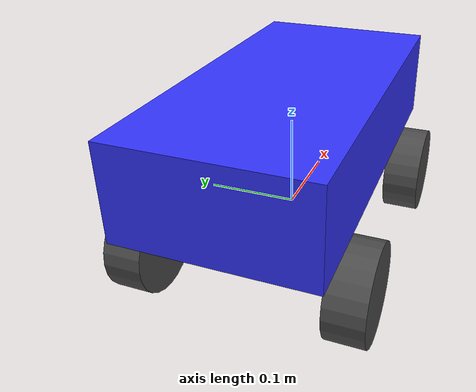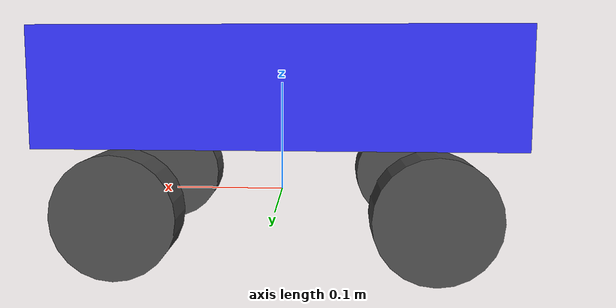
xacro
<?xml version="1.0"?>
<robot xmlns:xacro="http://www.ros.org/wiki/xacro" name="simple_bot">

    <!-- Included URDF/XACRO Files -->
    <xacro:include filename="$(find simple_robot)/urdf/robot.gazebo.xacro" />

    <xacro:property name="chassis_length" value="0.4"/>
    <xacro:property name="chassis_width" value="0.2"/>
    <xacro:property name="chassis_height" value="0.1"/>
    <xacro:property name="wheel_radius" value="0.05"/>
    <xacro:property name="wheel_width" value="0.04"/>
    <xacro:property name="wheelbase" value="0.25"/>
    <xacro:property name="track" value="0.22"/>

    <link name="base_link">
    </link>

    <link name="chassis_link">
        <visual>
            <origin xyz="0 0 0.1"/>
            <geometry>
                <box size="${chassis_length} ${chassis_width} ${chassis_height}"/>
            </geometry>
            <material name="blue">
                <color rgba="0.2 0.2 1.0 1.0"/>
            </material>
        </visual>
        <collision>
            <origin xyz="0 0 0.1"/>
            <geometry>
                <box size="${chassis_length} ${chassis_width} ${chassis_height}"/>
            </geometry>
        </collision>
        <inertial>
            <origin xyz="0 0 0.1" rpy="0 0 0"/>
            <mass value="5"/>
            <inertia ixx="0.1" ixy="0.0" ixz="0.0" iyy="0.1" iyz="0.0" izz="0.1"/>
        </inertial>
    </link>

    <joint name="chassis_joint" type="fixed">
        <parent link="base_link"/>
        <child link="chassis_link"/>
        <origin xyz="0 0 0"/>
    </joint>

    <!-- Rear Wheels (Driving) -->
    <xacro:macro name="rear_wheel" params="prefix y_offset">
        <link name="${prefix}_wheel_link">
            <visual>
                <origin xyz="0 0 0" rpy="1.5707 0 0"/>
                <geometry>
                    <cylinder radius="${wheel_radius}" length="${wheel_width}"/>
                </geometry>
                <material name="black">
                    <color rgba="0.3 0.3 0.3 1.0"/>
                </material>
            </visual>
            <collision>
                <origin xyz="0 0 0" rpy="1.5707 0 0"/>
                <geometry>
                    <cylinder radius="${wheel_radius}" length="${wheel_width}"/>
                </geometry>
            </collision>
            <inertial>
                <origin xyz="0 0 0" rpy="0 0 0"/>
                <mass value="0.5"/>
                <inertia ixx="0.01" ixy="0.0" ixz="0.0" iyy="0.01" iyz="0.0" izz="0.01"/>
            </inertial>
        </link>

        <joint name="${prefix}_wheel_joint" type="continuous">
            <parent link="base_link"/>
            <child link="${prefix}_wheel_link"/>
            <origin xyz="${-wheelbase/2} ${y_offset} 0" rpy="0 0 0"/>
            <axis xyz="0 1 0"/>
        </joint>
    </xacro:macro>

    <xacro:rear_wheel prefix="rear_left" y_offset="${track/2}"/>
    <xacro:rear_wheel prefix="rear_right" y_offset="${-track/2}"/>

    <!-- Front Wheels (Steering) -->
    <xacro:macro name="front_wheel" params="prefix y_offset">
        <link name="${prefix}_steering_link">
            <visual>
                <origin xyz="0 0 0" rpy="0 0 0"/>
                <geometry>
                    <box size="0.02 0.02 0.02"/>
                </geometry>
                <material name="red">
                    <color rgba="1.0 0.0 0.0 1.0"/>
                </material>
            </visual>
            <collision>
                <origin xyz="0 0 0" rpy="0 0 0"/>
                <geometry>
                    <box size="0.02 0.02 0.02"/>
                </geometry>
            </collision>
            <inertial>
                <origin xyz="0 0 0" rpy="0 0 0"/>
                <mass value="0.1"/>
                <inertia ixx="0.001" ixy="0" ixz="0" iyy="0.001" iyz="0" izz="0.001"/>
            </inertial>
        </link>

        <joint name="${prefix}_steering_joint" type="revolute">
            <parent link="base_link"/>
            <child link="${prefix}_steering_link"/>
            <origin xyz="${wheelbase/2} ${y_offset} 0" rpy="0 0 0"/>
            <axis xyz="0 0 1"/>
            <limit lower="-0.6" upper="0.6" effort="10" velocity="1.0"/>
        </joint>

        <link name="${prefix}_wheel_link">
            <visual>
                <origin xyz="0 0 0" rpy="1.5707 0 0"/>
                <geometry>
                    <cylinder radius="${wheel_radius}" length="${wheel_width}"/>
                </geometry>
                <material name="black">
                    <color rgba="0.3 0.3 0.3 1.0"/>
                </material>
            </visual>
            <collision>
                <origin xyz="0 0 0" rpy="1.5707 0 0"/>
                <geometry>
                    <cylinder radius="${wheel_radius}" length="${wheel_width}"/>
                </geometry>
            </collision>
            <inertial>
                <origin xyz="0 0 0" rpy="0 0 0"/>
                <mass value="0.5"/>
                <inertia ixx="0.01" ixy="0.0" ixz="0.0" iyy="0.01" iyz="0.0" izz="0.01"/>
            </inertial>
        </link>

        <joint name="${prefix}_wheel_joint" type="continuous">
            <parent link="${prefix}_steering_link"/>
            <child link="${prefix}_wheel_link"/>
            <origin xyz="0 0 0" rpy="0 0 0"/>
            <axis xyz="0 1 0"/>
        </joint>
    </xacro:macro>

    <xacro:front_wheel prefix="front_left" y_offset="${track/2}"/>
    <xacro:front_wheel prefix="front_right" y_offset="${-track/2}"/>

    <!-- Gazebo wheel friction properties -->
    <gazebo reference="rear_left_wheel_link">
        <mu1>0.8</mu1>
        <mu2>0.8</mu2>
        <material>Gazebo/Black</material>
    </gazebo>
    <gazebo reference="rear_right_wheel_link">
        <mu1>0.8</mu1>
        <mu2>0.8</mu2>
        <material>Gazebo/Black</material>
    </gazebo>
    <gazebo reference="front_left_wheel_link">
        <mu1>0.8</mu1>
        <mu2>0.8</mu2>
        <material>Gazebo/Black</material>
    </gazebo>
    <gazebo reference="front_right_wheel_link">
        <mu1>0.8</mu1>
        <mu2>0.8</mu2>
        <material>Gazebo/Black</material>
    </gazebo>

    <!-- ros2_control hardware interface -->
    <ros2_control name="GazeboSystem" type="system">
        <hardware>
            <plugin>gazebo_ros2_control/GazeboSystem</plugin>
        </hardware>

        <!-- Steering Joints -->
        <joint name="front_left_steering_joint">
            <command_interface name="position"/>
            <state_interface name="position"/>
            <state_interface name="velocity"/>
        </joint>
        <joint name="front_right_steering_joint">
            <command_interface name="position"/>
            <state_interface name="position"/>
            <state_interface name="velocity"/>
        </joint>

        <!-- Driving Joints -->
        <joint name="rear_left_wheel_joint">
            <command_interface name="velocity"/>
            <state_interface name="position"/>
            <state_interface name="velocity"/>
        </joint>
        <joint name="rear_right_wheel_joint">
            <command_interface name="velocity"/>
            <state_interface name="position"/>
            <state_interface name="velocity"/>
        </joint>
    </ros2_control>

</robot>
